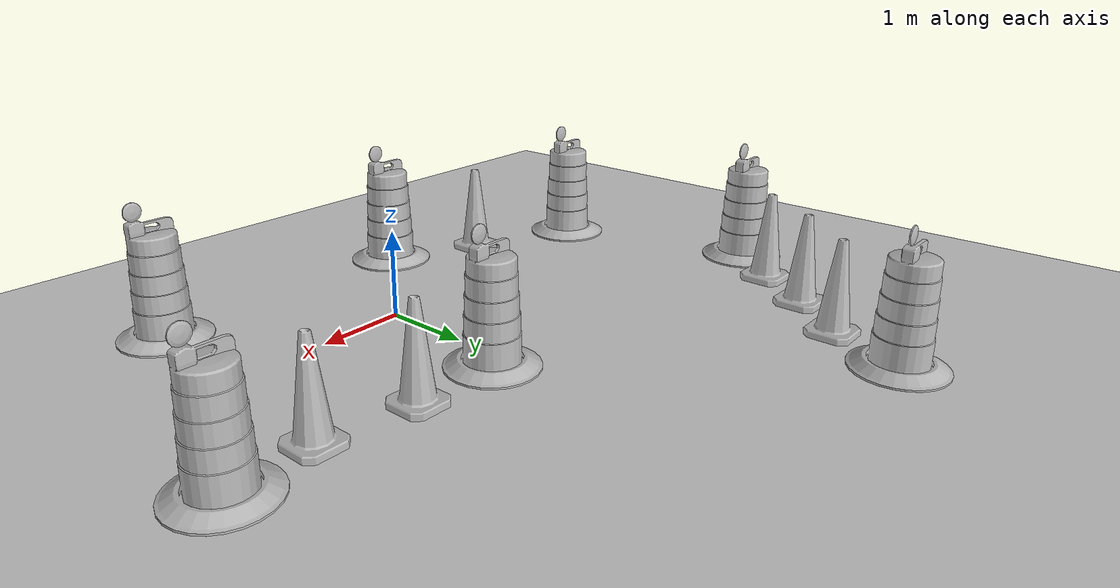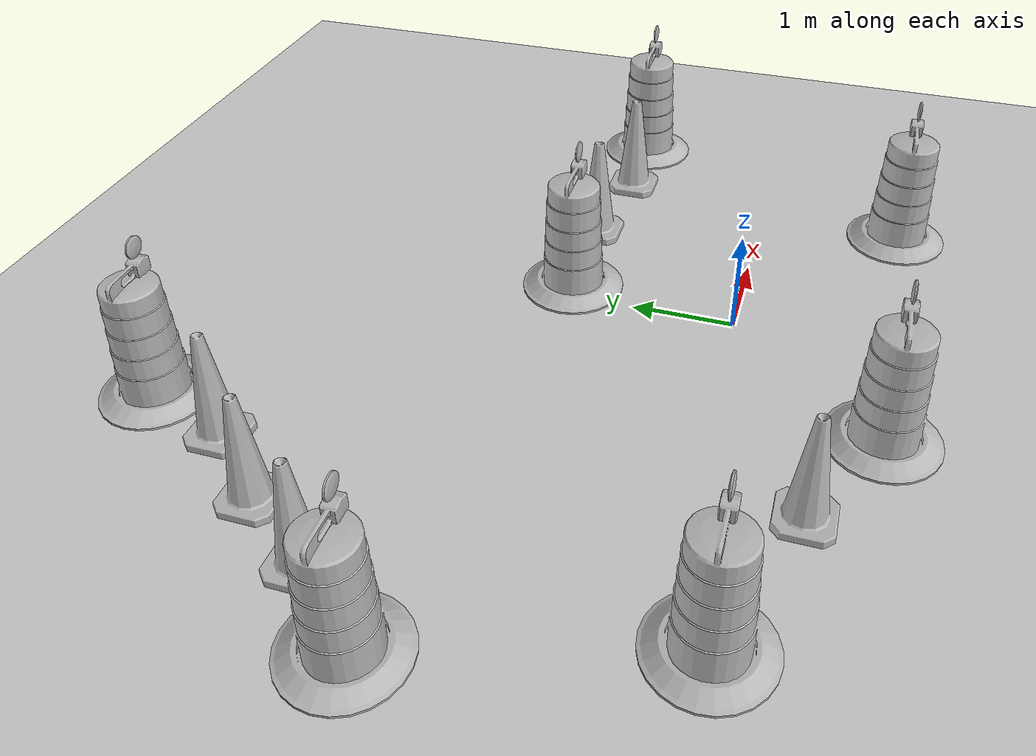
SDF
<sdf version="1.7">
 <world name="default">
  <light name="sun" type="directional">
   <pose>0 0 10 0 -0 0</pose>
   <diffuse>0.8 0.8 0.8 1</diffuse>
   <specular>0.2 0.2 0.2 1</specular>
   <attenuation>
    <range>1000</range>
    <constant>0.9</constant>
    <linear>0.01</linear>
    <quadratic>0.001</quadratic>
   </attenuation>
   <direction>-0.5 0.1 -0.9</direction>
   <spot><inner_angle>0</inner_angle><outer_angle>0</outer_angle><falloff>0</falloff></spot>
  </light>
  <model name="ground_plane">
   <static>1</static>
   <link name="link">
    <collision name="collision">
     <geometry><plane><normal>0 0 1</normal><size>100 100</size></plane></geometry>
     <surface>
      <contact><collide_bitmask>65535</collide_bitmask></contact>
      <friction><ode><mu>100</mu><mu2>50</mu2></ode></friction>
     </surface>
    </collision>
    <visual name="visual">
     <cast_shadows>0</cast_shadows>
     <geometry><plane><normal>0 0 1</normal><size>100 100</size></plane></geometry>
     <material>
      <script><uri>file://media/materials/scripts/gazebo.material</uri><name>Gazebo/Grey</name></script>
     </material>
    </visual>
   </link>
  </model>
  <gravity>0 0 -9.8</gravity>
  <magnetic_field>6e-06 2.3e-05 -4.2e-05</magnetic_field>
  <atmosphere type="adiabatic"/>
  <physics type="ode">
   <max_step_size>0.001</max_step_size>
   <real_time_factor>1</real_time_factor>
   <real_time_update_rate>1000</real_time_update_rate>
  </physics>
  <scene><ambient>0.4 0.4 0.4 1</ambient><background>0.7 0.7 0.7 1</background><shadows>1</shadows></scene>
  <audio><device>default</device></audio>
  <spherical_coordinates>
   <surface_model>EARTH_WGS84</surface_model>
   <latitude_deg>0</latitude_deg>
   <longitude_deg>0</longitude_deg>
   <elevation>0</elevation>
   <heading_deg>0</heading_deg>
  </spherical_coordinates>
  <model name="Construction Barrel">
   <link name="link">
    <inertial>
     <pose>0 0 0.4 0 -0 0</pose>
     <mass>500</mass>
     <inertia><ixx>51.2096</ixx><iyy>51.2096</iyy><izz>25</izz><ixy>0</ixy><ixz>0</ixz><iyz>0</iyz></inertia>
    </inertial>
    <collision name="collision">
     <geometry><mesh><uri>model://construction_barrel/meshes/construction_barrel.dae</uri></mesh></geometry>
    </collision>
    <visual name="visual">
     <geometry><mesh><uri>model://construction_barrel/meshes/construction_barrel.dae</uri></mesh></geometry>
    </visual>
   </link>
   <pose>-1.22009 -1.47157 -1e-06 4e-06 -1e-06 -0.000232</pose>
  </model>
  <model name="Construction Barrel_0">
   <link name="link">
    <inertial>
     <pose>0 0 0.4 0 -0 0</pose>
     <mass>500</mass>
     <inertia><ixx>51.2096</ixx><iyy>51.2096</iyy><izz>25</izz><ixy>0</ixy><ixz>0</ixz><iyz>0</iyz></inertia>
    </inertial>
    <collision name="collision">
     <geometry><mesh><uri>model://construction_barrel/meshes/construction_barrel.dae</uri></mesh></geometry>
    </collision>
    <visual name="visual">
     <geometry><mesh><uri>model://construction_barrel/meshes/construction_barrel.dae</uri></mesh></geometry>
    </visual>
   </link>
   <pose>2.01783 -1.43803 -2e-06 0 7e-06 -2.9e-05</pose>
  </model>
  <model name="Construction Barrel_1">
   <link name="link">
    <inertial>
     <pose>0 0 0.4 0 -0 0</pose>
     <mass>500</mass>
     <inertia><ixx>51.2096</ixx><iyy>51.2096</iyy><izz>25</izz><ixy>0</ixy><ixz>0</ixz><iyz>0</iyz></inertia>
    </inertial>
    <collision name="collision">
     <geometry><mesh><uri>model://construction_barrel/meshes/construction_barrel.dae</uri></mesh></geometry>
    </collision>
    <visual name="visual">
     <geometry><mesh><uri>model://construction_barrel/meshes/construction_barrel.dae</uri></mesh></geometry>
    </visual>
   </link>
   <pose>-3.67071 -0.432547 -1e-06 0 5e-06 -2.7e-05</pose>
  </model>
  <model name="Construction Barrel_2">
   <link name="link">
    <inertial>
     <pose>0 0 0.4 0 -0 0</pose>
     <mass>500</mass>
     <inertia><ixx>51.2096</ixx><iyy>51.2096</iyy><izz>25</izz><ixy>0</ixy><ixz>0</ixz><iyz>0</iyz></inertia>
    </inertial>
    <collision name="collision">
     <geometry><mesh><uri>model://construction_barrel/meshes/construction_barrel.dae</uri></mesh></geometry>
    </collision>
    <visual name="visual">
     <geometry><mesh><uri>model://construction_barrel/meshes/construction_barrel.dae</uri></mesh></geometry>
    </visual>
   </link>
   <pose>-4.39779 1.97634 -0 0 -0 -2.4e-05</pose>
  </model>
  <model name="Construction Barrel_3">
   <link name="link">
    <inertial>
     <pose>0 0 0.4 0 -0 0</pose>
     <mass>500</mass>
     <inertia><ixx>51.2096</ixx><iyy>51.2096</iyy><izz>25</izz><ixy>0</ixy><ixz>0</ixz><iyz>0</iyz></inertia>
    </inertial>
    <collision name="collision">
     <geometry><mesh><uri>model://construction_barrel/meshes/construction_barrel.dae</uri></mesh></geometry>
    </collision>
    <visual name="visual">
     <geometry><mesh><uri>model://construction_barrel/meshes/construction_barrel.dae</uri></mesh></geometry>
    </visual>
   </link>
   <pose>-2.44363 4.78004 -3e-06 0 -1.2e-05 -1.6e-05</pose>
  </model>
  <model name="Construction Cone">
   <link name="link">
    <collision name="collision">
     <geometry>
      <mesh><scale>10 10 10</scale><uri>model://construction_cone/meshes/construction_cone.dae</uri></mesh>
     </geometry>
    </collision>
    <visual name="visual">
     <geometry>
      <mesh><scale>10 10 10</scale><uri>model://construction_cone/meshes/construction_cone.dae</uri></mesh>
     </geometry>
    </visual>
    <inertial>
     <inertia><ixx>1</ixx><ixy>0</ixy><ixz>0</ixz><iyy>1</iyy><iyz>0</iyz><izz>1</izz></inertia>
     <mass>1</mass>
    </inertial>
   </link>
   <pose>-2.29372 -0.934443 -0 0 -1e-06 0</pose>
  </model>
  <model name="Construction Cone_0">
   <link name="link">
    <collision name="collision">
     <geometry>
      <mesh><scale>10 10 10</scale><uri>model://construction_cone/meshes/construction_cone.dae</uri></mesh>
     </geometry>
    </collision>
    <visual name="visual">
     <geometry>
      <mesh><scale>10 10 10</scale><uri>model://construction_cone/meshes/construction_cone.dae</uri></mesh>
     </geometry>
    </visual>
    <inertial>
     <inertia><ixx>1</ixx><ixy>0</ixy><ixz>0</ixz><iyy>1</iyy><iyz>0</iyz><izz>1</izz></inertia>
     <mass>1</mass>
    </inertial>
   </link>
   <pose>-3.82668 2.61365 -0 0 -1e-06 0</pose>
  </model>
  <model name="Construction Cone_1">
   <link name="link">
    <collision name="collision">
     <geometry>
      <mesh><scale>10 10 10</scale><uri>model://construction_cone/meshes/construction_cone.dae</uri></mesh>
     </geometry>
    </collision>
    <visual name="visual">
     <geometry>
      <mesh><scale>10 10 10</scale><uri>model://construction_cone/meshes/construction_cone.dae</uri></mesh>
     </geometry>
    </visual>
    <inertial>
     <inertia><ixx>1</ixx><ixy>0</ixy><ixz>0</ixz><iyy>1</iyy><iyz>0</iyz><izz>1</izz></inertia>
     <mass>1</mass>
    </inertial>
   </link>
   <pose>-2.77445 3.94211 -0 0 -0 0</pose>
  </model>
  <model name="Construction Cone_2">
   <link name="link">
    <collision name="collision">
     <geometry>
      <mesh><scale>10 10 10</scale><uri>model://construction_cone/meshes/construction_cone.dae</uri></mesh>
     </geometry>
    </collision>
    <visual name="visual">
     <geometry>
      <mesh><scale>10 10 10</scale><uri>model://construction_cone/meshes/construction_cone.dae</uri></mesh>
     </geometry>
    </visual>
    <inertial>
     <inertia><ixx>1</ixx><ixy>0</ixy><ixz>0</ixz><iyy>1</iyy><iyz>0</iyz><izz>1</izz></inertia>
     <mass>1</mass>
    </inertial>
   </link>
   <pose>-3.3466 3.30045 -0 0 -0 0</pose>
  </model>
  <model name="Construction Barrel_4">
   <link name="link">
    <inertial>
     <pose>0 0 0.4 0 -0 0</pose>
     <mass>500</mass>
     <inertia><ixx>51.2096</ixx><iyy>51.2096</iyy><izz>25</izz><ixy>0</ixy><ixz>0</ixz><iyz>0</iyz></inertia>
    </inertial>
    <collision name="collision">
     <geometry><mesh><uri>model://construction_barrel/meshes/construction_barrel.dae</uri></mesh></geometry>
    </collision>
    <visual name="visual">
     <geometry><mesh><uri>model://construction_barrel/meshes/construction_barrel.dae</uri></mesh></geometry>
    </visual>
   </link>
   <pose>0.201739 1.67661 0 0 0 -9e-06</pose>
  </model>
  <model name="Construction Barrel_5">
   <link name="link">
    <inertial>
     <pose>0 0 0.4 0 -0 0</pose>
     <mass>500</mass>
     <inertia><ixx>51.2096</ixx><iyy>51.2096</iyy><izz>25</izz><ixy>0</ixy><ixz>0</ixz><iyz>0</iyz></inertia>
    </inertial>
    <collision name="collision">
     <geometry><mesh><uri>model://construction_barrel/meshes/construction_barrel.dae</uri></mesh></geometry>
    </collision>
    <visual name="visual">
     <geometry><mesh><uri>model://construction_barrel/meshes/construction_barrel.dae</uri></mesh></geometry>
    </visual>
   </link>
   <pose>3.21881 1.59127 0 0 -0 -7e-06</pose>
  </model>
  <model name="Construction Cone_3">
   <link name="link">
    <collision name="collision">
     <geometry>
      <mesh><scale>10 10 10</scale><uri>model://construction_cone/meshes/construction_cone.dae</uri></mesh>
     </geometry>
    </collision>
    <visual name="visual">
     <geometry>
      <mesh><scale>10 10 10</scale><uri>model://construction_cone/meshes/construction_cone.dae</uri></mesh>
     </geometry>
    </visual>
    <inertial>
     <inertia><ixx>1</ixx><ixy>0</ixy><ixz>0</ixz><iyy>1</iyy><iyz>0</iyz><izz>1</izz></inertia>
     <mass>1</mass>
    </inertial>
   </link>
   <pose>1.24079 1.69856 0 -0 -0 -0</pose>
  </model>
  <model name="Construction Cone_4">
   <link name="link">
    <collision name="collision">
     <geometry>
      <mesh><scale>10 10 10</scale><uri>model://construction_cone/meshes/construction_cone.dae</uri></mesh>
     </geometry>
    </collision>
    <visual name="visual">
     <geometry>
      <mesh><scale>10 10 10</scale><uri>model://construction_cone/meshes/construction_cone.dae</uri></mesh>
     </geometry>
    </visual>
    <inertial>
     <inertia><ixx>1</ixx><ixy>0</ixy><ixz>0</ixz><iyy>1</iyy><iyz>0</iyz><izz>1</izz></inertia>
     <mass>1</mass>
    </inertial>
   </link>
   <pose>2.30892 1.54966 -0 0 -1e-06 0</pose>
  </model>
 </world>
</sdf>
